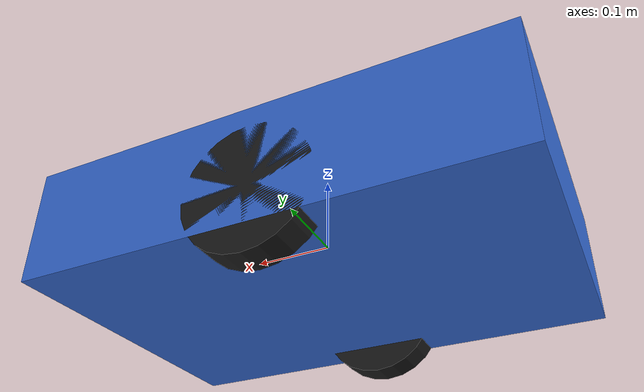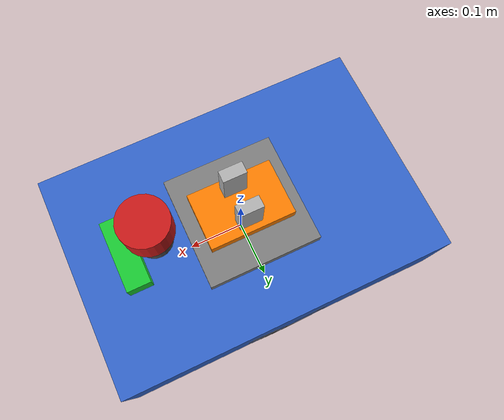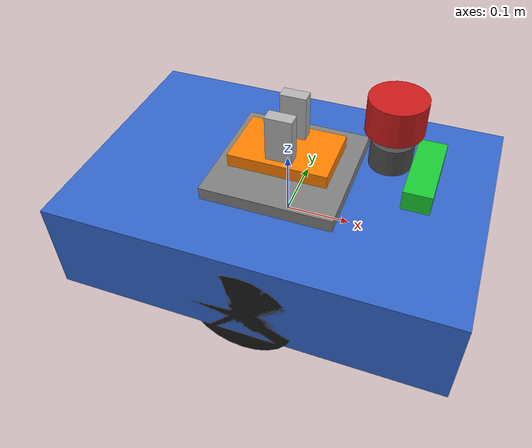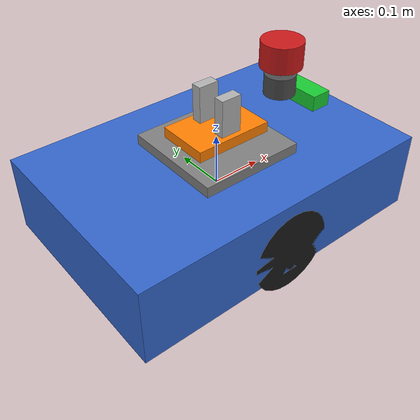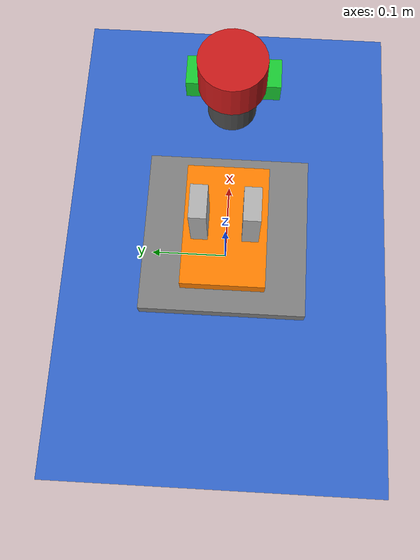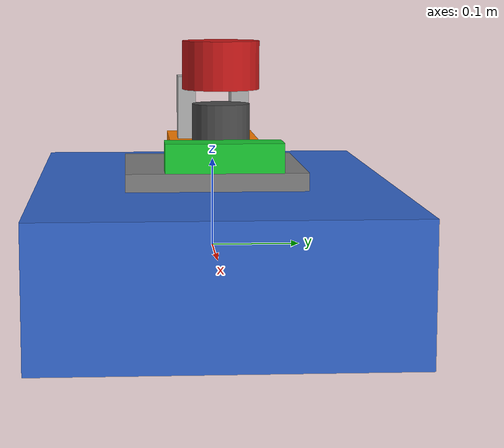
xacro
<?xml version="1.0"?>
<robot xmlns:xacro="http://www.ros.org/wiki/xacro" name="factory_robot">

  <!-- 属性参数：便于后续调整尺寸 -->
  <xacro:property name="base_length" value="0.6"/>
  <xacro:property name="base_width"  value="0.4"/>
  <xacro:property name="base_height" value="0.15"/>
  <xacro:property name="base_mass"   value="20.0"/>
  <xacro:property name="wheel_radius" value="0.08"/>
  <xacro:property name="wheel_width"  value="0.04"/>
  <xacro:property name="wheel_mass"   value="1.5"/>
  <xacro:property name="wheel_y_offset" value="0.18"/>
  <xacro:property name="wheel_z_offset" value="-0.03"/>

  <!-- 材质宏 -->
  <xacro:macro name="box_inertia" params="m w h d">
    <inertial>
      <origin xyz="0 0 0" rpy="0 0 0"/>
      <mass value="${m}"/>
      <inertia ixx="${m*(h*h + d*d)/12}" ixy="0" ixz="0"
               iyy="${m*(w*w + d*d)/12}" iyz="0"
               izz="${m*(w*w + h*h)/12}"/>
    </inertial>
  </xacro:macro>

  <xacro:macro name="cylinder_inertia" params="m r h">
    <inertial>
      <origin xyz="0 0 0" rpy="0 0 0"/>
      <mass value="${m}"/>
      <inertia ixx="${m*(3*r*r + h*h)/12}" ixy="0" ixz="0"
               iyy="${m*(3*r*r + h*h)/12}" iyz="0"
               izz="${m*r*r/2}"/>
    </inertial>
  </xacro:macro>

  <!-- ================== BASE LINK ================== -->
  <link name="base_link">
    <visual>
      <origin xyz="0 0 0" rpy="0 0 0"/>
      <geometry>
        <box size="${base_length} ${base_width} ${base_height}"/>
      </geometry>
      <material name="blue">
        <color rgba="0.2 0.4 0.8 1.0"/>
      </material>
    </visual>
    <collision>
      <origin xyz="0 0 0" rpy="0 0 0"/>
      <geometry>
        <box size="${base_length} ${base_width} ${base_height}"/>
      </geometry>
    </collision>
    <xacro:box_inertia m="${base_mass}" w="${base_width}" h="${base_height}" d="${base_length}"/>
  </link>

  <!-- ================== LEFT WHEEL ================== -->
  <link name="left_wheel_link">
    <visual>
      <origin xyz="0 0 0" rpy="${-pi/2} 0 0"/>
      <geometry>
        <cylinder radius="${wheel_radius}" length="${wheel_width}"/>
      </geometry>
      <material name="black">
        <color rgba="0.1 0.1 0.1 1.0"/>
      </material>
    </visual>
    <collision>
      <origin xyz="0 0 0" rpy="${-pi/2} 0 0"/>
      <geometry>
        <cylinder radius="${wheel_radius}" length="${wheel_width}"/>
      </geometry>
    </collision>
    <xacro:cylinder_inertia m="${wheel_mass}" r="${wheel_radius}" h="${wheel_width}"/>
  </link>

  <joint name="left_wheel_joint" type="continuous">
    <parent link="base_link"/>
    <child link="left_wheel_link"/>
    <origin xyz="0 ${wheel_y_offset} ${wheel_z_offset}" rpy="0 0 0"/>
    <axis xyz="0 1 0"/>
  </joint>

  <!-- ================== RIGHT WHEEL ================== -->
  <link name="right_wheel_link">
    <visual>
      <origin xyz="0 0 0" rpy="${-pi/2} 0 0"/>
      <geometry>
        <cylinder radius="${wheel_radius}" length="${wheel_width}"/>
      </geometry>
      <material name="black"/>
    </visual>
    <collision>
      <origin xyz="0 0 0" rpy="${-pi/2} 0 0"/>
      <geometry>
        <cylinder radius="${wheel_radius}" length="${wheel_width}"/>
      </geometry>
    </collision>
    <xacro:cylinder_inertia m="${wheel_mass}" r="${wheel_radius}" h="${wheel_width}"/>
  </link>

  <joint name="right_wheel_joint" type="continuous">
    <parent link="base_link"/>
    <child link="right_wheel_link"/>
    <origin xyz="0 ${-wheel_y_offset} ${wheel_z_offset}" rpy="0 0 0"/>
    <axis xyz="0 1 0"/>
  </joint>

  <!-- ================== CASTER WHEEL (被动支撑) ================== -->
  <link name="caster_wheel_link">
    <visual>
      <origin xyz="0 0 0" rpy="0 0 0"/>
      <geometry>
        <sphere radius="0.04"/>
      </geometry>
      <material name="grey">
        <color rgba="0.5 0.5 0.5 1.0"/>
      </material>
    </visual>
    <collision>
      <origin xyz="0 0 0" rpy="0 0 0"/>
      <geometry>
        <sphere radius="0.04"/>
      </geometry>
    </collision>
    <inertial>
      <mass value="0.5"/>
      <inertia ixx="0.001" ixy="0" ixz="0" iyy="0.001" iyz="0" izz="0.001"/>
    </inertial>
  </link>

  <joint name="caster_wheel_joint" type="fixed">
    <parent link="base_link"/>
    <child link="caster_wheel_link"/>
    <origin xyz="-0.2 0 ${wheel_z_offset + 0.04}" rpy="0 0 0"/>
  </joint>

  <!-- ================== TOP MOUNT (机械臂 / 扩展件预留安装位) ================== -->
  <link name="top_mount_link">
    <visual>
      <origin xyz="0 0 0" rpy="0 0 0"/>
      <geometry>
        <box size="0.2 0.2 0.02"/>
      </geometry>
      <material name="grey"/>
    </visual>
    <collision>
      <origin xyz="0 0 0" rpy="0 0 0"/>
      <geometry>
        <box size="0.2 0.2 0.02"/>
      </geometry>
    </collision>
    <inertial>
      <mass value="0.5"/>
      <inertia ixx="0.001" ixy="0" ixz="0" iyy="0.001" iyz="0" izz="0.001"/>
    </inertial>
  </link>

  <joint name="top_mount_joint" type="fixed">
    <parent link="base_link"/>
    <child link="top_mount_link"/>
    <origin xyz="0 0 ${base_height/2 + 0.01}" rpy="0 0 0"/>
  </joint>

  <!-- ================== 传感器引入 ================== -->
  <xacro:include filename="$(find factory_robot_description)/urdf/sensors/lidar.xacro"/>
  <xacro:include filename="$(find factory_robot_description)/urdf/sensors/depth_camera.xacro"/>

  <!-- 调用传感器宏，安装到 base_link 前上端 -->
  <xacro:lidar_sensor parent="base_link" xyz="0.15 0 ${base_height/2 + 0.08}" rpy="0 0 0"/>
  <xacro:depth_camera_sensor parent="base_link" xyz="0.2 0 ${base_height/2 + 0.05}" rpy="0 0 0"/>

  <!-- Gazebo Ignition 插件（差速控制） -->
  <xacro:include filename="$(find factory_robot_description)/urdf/gazebo_plugins.xacro"/>

  <!-- ================== GRIPPER (1-DOF parallel jaw) ================== -->
  <xacro:include filename="$(find robot_gripper)/urdf/gripper.urdf.xacro"/>
  <xacro:parallel_gripper parent="top_mount_link" xyz="0 0 0.03" rpy="0 0 0"/>
</robot>

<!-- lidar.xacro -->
<robot xmlns:xacro="http://www.ros.org/wiki/xacro">

  <xacro:macro name="lidar_sensor" params="parent xyz rpy">

    <!-- 激光雷达安装支架 -->
    <link name="lidar_mount_link">
      <visual>
        <origin xyz="0 0 0" rpy="0 0 0"/>
        <geometry>
          <cylinder radius="0.03" length="0.04"/>
        </geometry>
        <material name="dark_grey">
          <color rgba="0.3 0.3 0.3 1.0"/>
        </material>
      </visual>
      <collision>
        <origin xyz="0 0 0" rpy="0 0 0"/>
        <geometry>
          <cylinder radius="0.03" length="0.04"/>
        </geometry>
      </collision>
      <inertial>
        <mass value="0.2"/>
        <inertia ixx="0.0001" ixy="0" ixz="0" iyy="0.0001" iyz="0" izz="0.0001"/>
      </inertial>
    </link>

    <joint name="lidar_mount_joint" type="fixed">
      <parent link="${parent}"/>
      <child link="lidar_mount_link"/>
      <origin xyz="${xyz}" rpy="${rpy}"/>
    </joint>

    <!-- 激光雷达本体 link -->
    <link name="lidar_link">
      <visual>
        <origin xyz="0 0 0.02" rpy="0 0 0"/>
        <geometry>
          <cylinder radius="0.04" length="0.05"/>
        </geometry>
        <material name="red">
          <color rgba="0.8 0.1 0.1 1.0"/>
        </material>
      </visual>
      <collision>
        <origin xyz="0 0 0.02" rpy="0 0 0"/>
        <geometry>
          <cylinder radius="0.04" length="0.05"/>
        </geometry>
      </collision>
      <inertial>
        <mass value="0.3"/>
        <inertia ixx="0.0002" ixy="0" ixz="0" iyy="0.0002" iyz="0" izz="0.0002"/>
      </inertial>
    </link>

    <joint name="lidar_joint" type="fixed">
      <parent link="lidar_mount_link"/>
      <child link="lidar_link"/>
      <origin xyz="0 0 0.04" rpy="0 0 0"/>
    </joint>

    <!-- Gazebo Ignition 激光雷达插件 -->
    <gazebo reference="lidar_link">
      <sensor name="lidar_sensor" type="gpu_lidar">
        <update_rate>20</update_rate>
        <visualize>true</visualize>
        <topic>scan</topic>
        <lidar>
          <scan>
            <horizontal>
              <samples>360</samples>
              <resolution>1</resolution>
              <min_angle>-3.14159</min_angle>
              <max_angle>3.14159</max_angle>
            </horizontal>
          </scan>
          <range>
            <min>0.15</min>
            <max>30.0</max>
            <resolution>0.01</resolution>
          </range>
          <noise>
            <type>gaussian</type>
            <mean>0.0</mean>
            <stddev>0.01</stddev>
          </noise>
        </lidar>
        <plugin filename="libignition-gazebo-sensors-system.so" name="ignition::gazebo::systems::Sensors">
          <render_engine>ogre2</render_engine>
        </plugin>
      </sensor>
    </gazebo>

  </xacro:macro>

</robot>

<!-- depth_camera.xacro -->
<robot xmlns:xacro="http://www.ros.org/wiki/xacro">

  <xacro:macro name="depth_camera_sensor" params="parent xyz rpy">

    <link name="camera_link">
      <visual>
        <origin xyz="0 0 0" rpy="0 0 0"/>
        <geometry>
          <box size="0.04 0.12 0.03"/>
        </geometry>
        <material name="green">
          <color rgba="0.1 0.8 0.2 1.0"/>
        </material>
      </visual>
      <collision>
        <origin xyz="0 0 0" rpy="0 0 0"/>
        <geometry>
          <box size="0.04 0.12 0.03"/>
        </geometry>
      </collision>
      <inertial>
        <mass value="0.1"/>
        <inertia ixx="0.0001" ixy="0" ixz="0" iyy="0.0001" iyz="0" izz="0.0001"/>
      </inertial>
    </link>

    <joint name="camera_joint" type="fixed">
      <parent link="${parent}"/>
      <child link="camera_link"/>
      <origin xyz="${xyz}" rpy="${rpy}"/>
    </joint>

    <!-- Gazebo Ignition RGB-D 相机插件 -->
    <gazebo reference="camera_link">
      <sensor name="depth_camera" type="rgbd_camera">
        <camera>
          <horizontal_fov>1.047</horizontal_fov>
          <image>
            <width>640</width>
            <height>480</height>
          </image>
          <clip>
            <near>0.1</near>
            <far>10.0</far>
          </clip>
        </camera>
        <always_on>1</always_on>
        <update_rate>30</update_rate>
        <visualize>true</visualize>
        <topic>camera</topic>
        <plugin filename="libignition-gazebo-sensors-system.so" name="ignition::gazebo::systems::Sensors">
          <render_engine>ogre2</render_engine>
        </plugin>
      </sensor>
    </gazebo>

  </xacro:macro>

</robot>

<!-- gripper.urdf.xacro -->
<robot xmlns:xacro="http://www.ros.org/wiki/xacro">

  <xacro:macro name="parallel_gripper" params="parent xyz rpy">

    <!-- === Gripper base plate === -->
    <link name="gripper_base_link">
      <visual>
        <origin xyz="0 0 0" rpy="0 0 0"/>
        <geometry>
          <box size="0.15 0.10 0.02"/>
        </geometry>
        <material name="orange">
          <color rgba="1.0 0.5 0.0 1.0"/>
        </material>
      </visual>
      <collision>
        <origin xyz="0 0 0" rpy="0 0 0"/>
        <geometry>
          <box size="0.15 0.10 0.02"/>
        </geometry>
      </collision>
      <inertial>
        <mass value="0.3"/>
        <inertia ixx="0.0001" ixy="0" ixz="0" iyy="0.0001" iyz="0" izz="0.0001"/>
      </inertial>
    </link>

    <joint name="gripper_base_joint" type="fixed">
      <parent link="${parent}"/>
      <child link="gripper_base_link"/>
      <origin xyz="${xyz}" rpy="${rpy}"/>
    </joint>

    <!-- === Left finger === -->
    <link name="left_finger_link">
      <visual>
        <origin xyz="0 0.03 0.04" rpy="0 0 0"/>
        <geometry>
          <box size="0.04 0.02 0.08"/>
        </geometry>
        <material name="silver">
          <color rgba="0.7 0.7 0.7 1.0"/>
        </material>
      </visual>
      <collision>
        <origin xyz="0 0.03 0.04" rpy="0 0 0"/>
        <geometry>
          <box size="0.04 0.02 0.08"/>
        </geometry>
      </collision>
      <inertial>
        <mass value="0.05"/>
        <inertia ixx="0.00001" ixy="0" ixz="0" iyy="0.00001" iyz="0" izz="0.00001"/>
      </inertial>
    </link>

    <joint name="left_finger_joint" type="prismatic">
      <parent link="gripper_base_link"/>
      <child link="left_finger_link"/>
      <origin xyz="0 0 0" rpy="0 0 0"/>
      <axis xyz="0 1 0"/>
      <limit lower="0.0" upper="0.04" effort="10.0" velocity="0.1"/>
    </joint>

    <!-- === Right finger (mimics left finger in opposite direction) === -->
    <link name="right_finger_link">
      <visual>
        <origin xyz="0 -0.03 0.04" rpy="0 0 0"/>
        <geometry>
          <box size="0.04 0.02 0.08"/>
        </geometry>
        <material name="silver"/>
      </visual>
      <collision>
        <origin xyz="0 -0.03 0.04" rpy="0 0 0"/>
        <geometry>
          <box size="0.04 0.02 0.08"/>
        </geometry>
      </collision>
      <inertial>
        <mass value="0.05"/>
        <inertia ixx="0.00001" ixy="0" ixz="0" iyy="0.00001" iyz="0" izz="0.00001"/>
      </inertial>
    </link>

    <joint name="right_finger_joint" type="prismatic">
      <parent link="gripper_base_link"/>
      <child link="right_finger_link"/>
      <origin xyz="0 0 0" rpy="0 0 0"/>
      <axis xyz="0 1 0"/>
      <limit lower="0.0" upper="0.04" effort="10.0" velocity="0.1"/>
      <!-- mimic: moves equally in opposite direction to left finger -->
      <mimic joint="left_finger_joint" multiplier="-1.0" offset="0.0"/>
    </joint>

    <!-- === Gazebo material hints === -->
    <gazebo reference="gripper_base_link">
      <material>Gazebo/Orange</material>
    </gazebo>
    <gazebo reference="left_finger_link">
      <material>Gazebo/Grey</material>
    </gazebo>
    <gazebo reference="right_finger_link">
      <material>Gazebo/Grey</material>
    </gazebo>

  </xacro:macro>

</robot>
